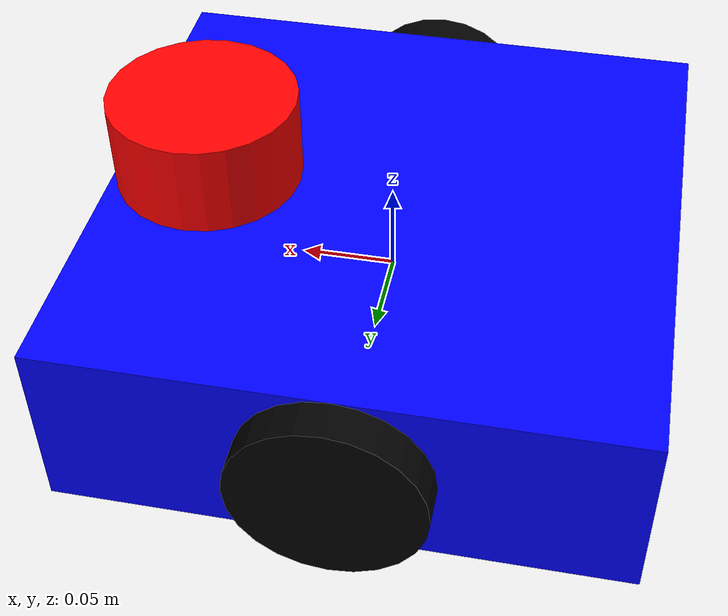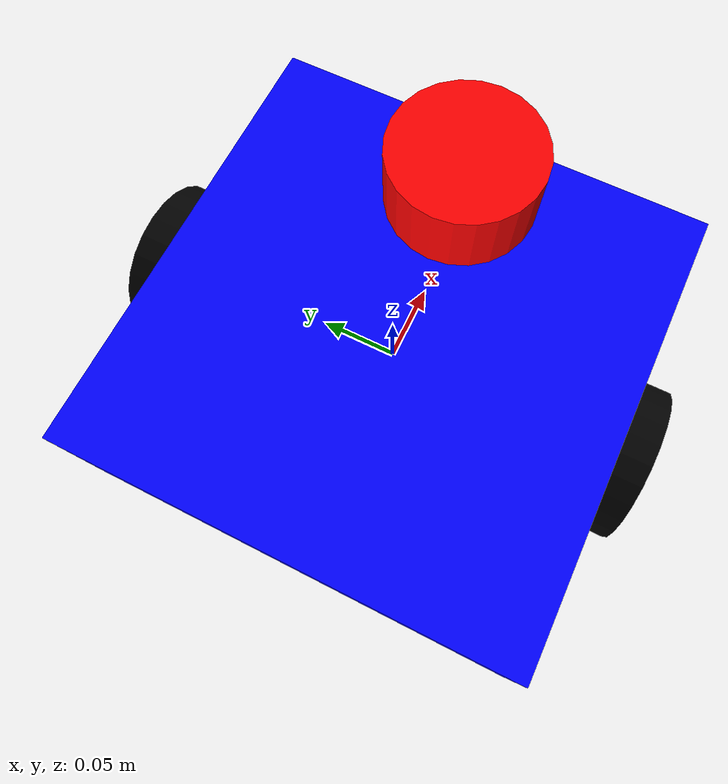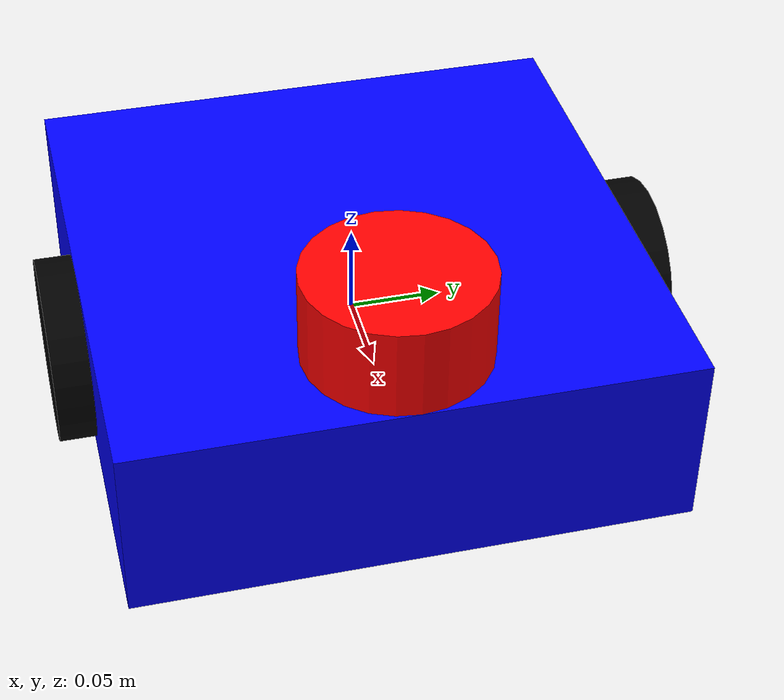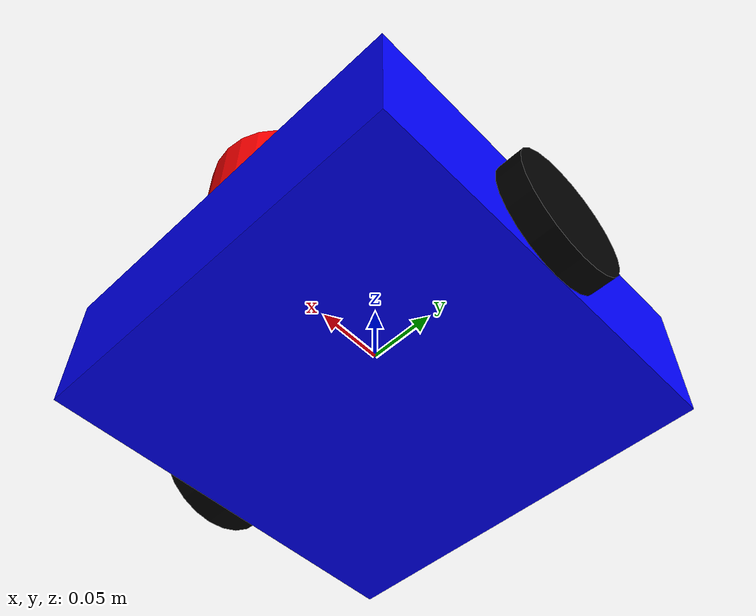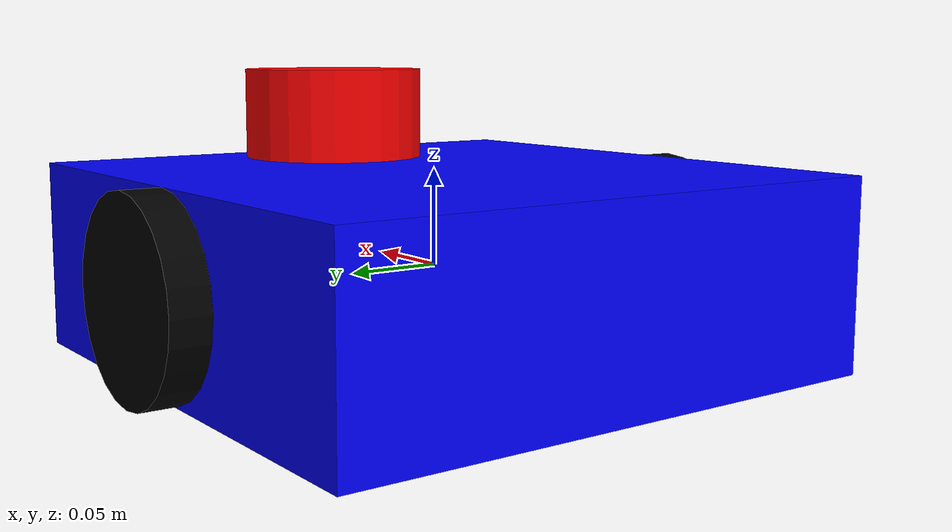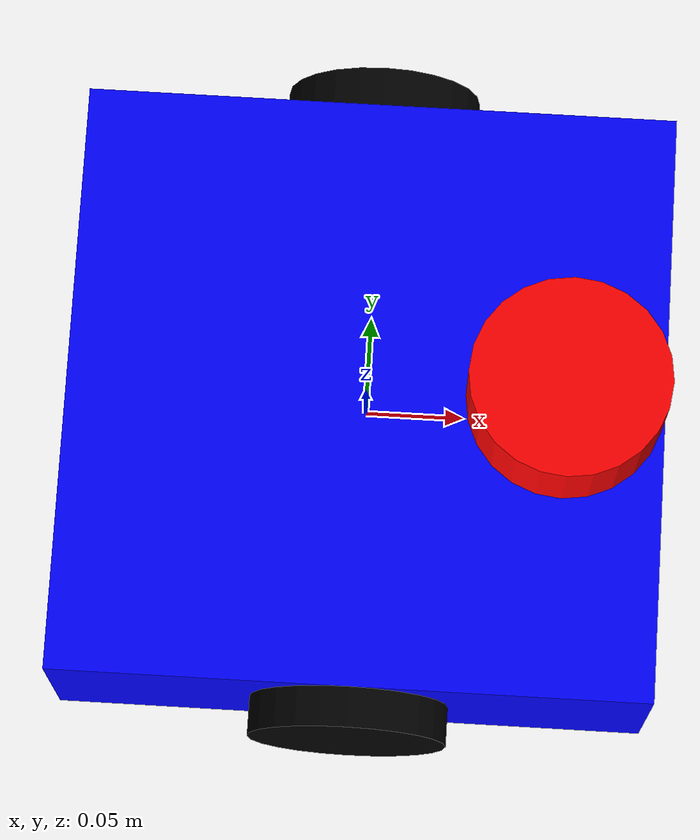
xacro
<?xml version="1.0"?>
<robot name="my_robot" xmlns:xacro="http://www.ros.org/wiki/xacro">

  <!-- ==================== 参数 ==================== -->
  <xacro:property name="base_length" value="0.3"/>
  <xacro:property name="base_width"  value="0.3"/>
  <xacro:property name="base_height" value="0.1"/>

  <xacro:property name="wheel_radius" value="0.05"/>
  <xacro:property name="wheel_width"  value="0.02"/>
  <xacro:property name="wheel_offset_x" value="0.0"/>
  <xacro:property name="wheel_offset_y" value="0.16"/>
  <xacro:property name="wheel_offset_z" value="0.0"/>

  <xacro:property name="laser_radius" value="0.05"/>
  <xacro:property name="laser_height" value="0.05"/>

  <!-- ==================== 底盘 ==================== -->
  <link name="base_link">
    <visual>
      <geometry>
        <box size="${base_length} ${base_width} ${base_height}"/>
      </geometry>
      <material name="blue">
        <color rgba="0 0 1 1"/>
      </material>
    </visual>
    <collision>
      <geometry>
        <box size="${base_length} ${base_width} ${base_height}"/>
      </geometry>
    </collision>
    <inertial>
      <mass value="1.0"/>
      <inertia ixx="0.01" ixy="0" ixz="0"
               iyy="0.01" iyz="0" izz="0.01"/>
    </inertial>
  </link>

  <!-- ==================== 轮子宏 ==================== -->
  <xacro:macro name="wheel" params="prefix y_offset">
    <link name="${prefix}_wheel">
      <visual>
        <geometry>
          <cylinder radius="${wheel_radius}" length="${wheel_width}"/>
        </geometry>
        <material name="black">
          <color rgba="0 0 0 1"/>
        </material>
      </visual>
      <collision>
        <geometry>
          <cylinder radius="${wheel_radius}" length="${wheel_width}"/>
        </geometry>
      </collision>
      <inertial>
        <mass value="0.1"/>
        <inertia ixx="0.0001" ixy="0" ixz="0"
                 iyy="0.0001" iyz="0" izz="0.0001"/>
      </inertial>
    </link>

    <joint name="${prefix}_wheel_joint" type="continuous">
      <parent link="base_link"/>
      <child link="${prefix}_wheel"/>
      <origin xyz="${wheel_offset_x} ${y_offset} ${wheel_offset_z}"
              rpy="1.5708 0 0"/>
      <axis xyz="0 0 1"/>
    </joint>
  </xacro:macro>

  <!-- ==================== 左轮 ==================== -->
  <xacro:wheel prefix="left" y_offset="${wheel_offset_y}"/>

  <!-- ==================== 右轮 ==================== -->
  <xacro:wheel prefix="right" y_offset="-${wheel_offset_y}"/>

  <!-- ==================== 激光雷达 ==================== -->
  <link name="laser_link">
    <visual>
      <geometry>
        <cylinder radius="${laser_radius}" length="${laser_height}"/>
      </geometry>
      <material name="red">
        <color rgba="1 0 0 1"/>
      </material>
    </visual>
    <collision>
      <geometry>
        <cylinder radius="${laser_radius}" length="${laser_height}"/>
      </geometry>
    </collision>
    <inertial>
      <mass value="0.1"/>
      <inertia ixx="0.0001" ixy="0" ixz="0"
               iyy="0.0001" iyz="0" izz="0.0001"/>
    </inertial>
  </link>

  <joint name="laser_joint" type="fixed">
    <parent link="base_link"/>
    <child link="laser_link"/>
    <origin xyz="0.1 0 ${base_height/2 + laser_height/2}" rpy="0 0 0"/>
  </joint>

</robot>
